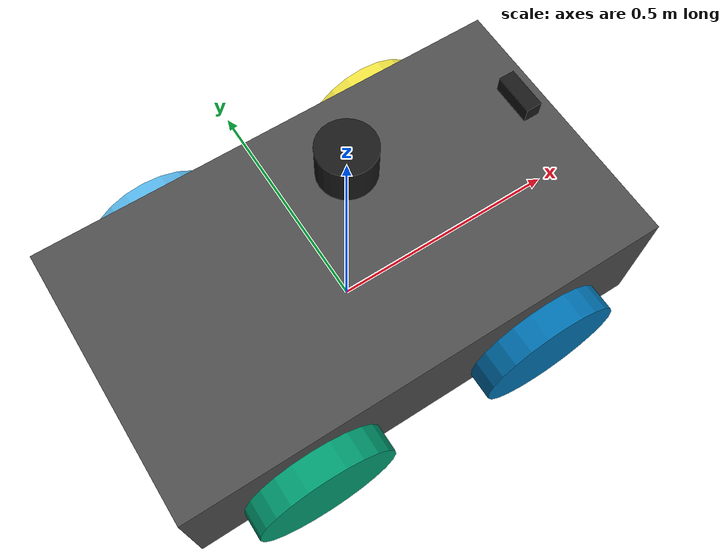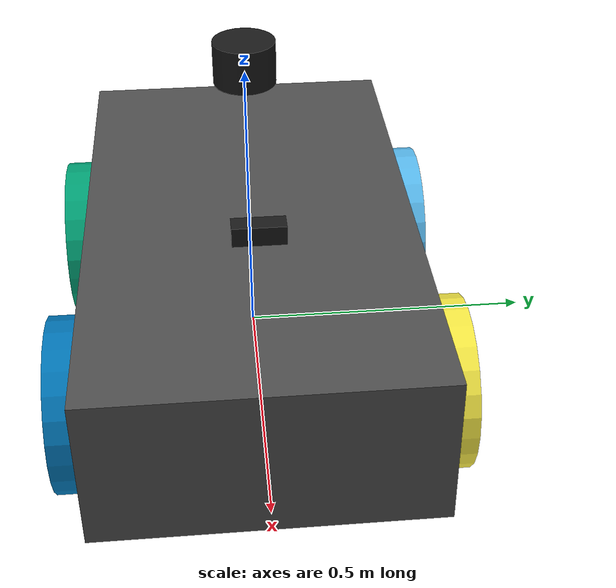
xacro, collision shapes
<robot name="husky" xmlns:xacro="http://www.ros.org/wiki/xacro">

    <!-- URDF file for general ROS systems such as ros_control, rviz, etc.           -->
    <!-- Clearpath Robotics Husky A200 - Differential Drive Robot                     -->

    <xacro:macro name="make_box_inertia" params="mass size_x size_y size_z">
        <inertial>
            <mass value="${mass}" />
            <inertia ixx="${mass * (size_y * size_y + size_z * size_z) / 12}" ixy="0" ixz="0" iyy="${mass * (size_z * size_z + size_x * size_x) / 12}" iyz="0" izz="${mass * (size_x * size_x + size_y * size_y) / 12}" />
        </inertial>
    </xacro:macro>

    <xacro:macro name="make_wheel_inertia" params="mass radius length">
        <inertial>
            <mass value="${mass}" />
            <!-- assuming axis of cylinder is y, not z -->
            <inertia ixx="${mass * (radius * radius / 4 + length * length / 12)}" ixy="0" ixz="0" iyy="${mass * radius * radius / 2}" iyz="0" izz="${mass * (radius * radius / 4 + length * length / 12)}" />
        </inertial>
    </xacro:macro>

    <!-- ================= Husky Dimensions ================= -->
    <xacro:property name="wheel_radius" value="0.148" />
    <xacro:property name="wheel_length" value="0.1143" />
    <xacro:property name="wheel_mass" value="2.6357" />
    <xacro:property name="wheel_separation" value="0.5709" />
    <xacro:property name="wheel_base" value="0.512" />

    <!-- ================= MAIN BODY (ROOT LINK) ================= -->

    <link name="base_link">
        <visual name="lidar_mast">
            <origin xyz="0.0000 0 0.351695" rpy="0 0 0" />
            <geometry><cylinder radius="0.020" length="0.26340" /></geometry>
            <material name="dark_grey"><color rgba="0.3 0.3 0.3 1" /></material>
        </visual>
        <visual name="camera_mast">
            <origin xyz="0.3543 0 0.311325" rpy="0 0 0" />
            <geometry><cylinder radius="0.010" length="0.18265" /></geometry>
            <material name="dark_grey"><color rgba="0.3 0.3 0.3 1" /></material>
        </visual>
        <inertial>
            <mass value="33.855" />
            <origin xyz="-0.0856132 -0.000839955 0.238145" rpy="0 0 0" />
            <inertia ixx="2.2343" ixy="-0.023642" ixz="0.275174" iyy="3.42518" iyz="0.00239624" izz="2.1241" />
        </inertial>

        <visual name="base">
            <origin xyz="0 0 0" rpy="0 0 0" />
            <geometry>
                <mesh filename="package://differential/model/meshes/base_link.stl" />
            </geometry>
        </visual>

        <visual name="top_plate">
            <origin xyz="0 0 0" rpy="0 0 0" />
            <geometry>
                <mesh filename="package://differential/model/meshes/top_plate.stl" />
            </geometry>
        </visual>

        <visual name="front_bumper">
            <origin xyz="0.47 0 0.091" rpy="0 0 0" />
            <geometry>
                <mesh filename="package://differential/model/meshes/bumper.stl" />
            </geometry>
        </visual>

        <visual name="rear_bumper">
            <origin xyz="-0.47 0 0.091" rpy="0 0 ${pi}" />
            <geometry>
                <mesh filename="package://differential/model/meshes/bumper.stl" />
            </geometry>
        </visual>

        <visual name="user_rail">
            <origin xyz="0.272 0 0.245" rpy="0 0 0" />
            <geometry>
                <mesh filename="package://differential/model/meshes/user_rail.stl" />
            </geometry>
        </visual>

        <collision name="collision">
            <origin xyz="0 0 0.1" rpy="0 0 0" />
            <geometry>
                <box size="1.0074 0.5709 0.2675" />
            </geometry>
        </collision>
    </link>

    <!-- ================= BACK LEFT WHEEL ================= -->

    <link name="back_left_wheel">
        <xacro:make_wheel_inertia mass="${wheel_mass}" radius="${wheel_radius}" length="${wheel_length}" />

        <visual>
            <origin xyz="0 0 0" rpy="${-pi} 0 0" />
            <geometry>
                <mesh filename="package://differential/model/meshes/wheel.stl" />
            </geometry>
        </visual>

        <collision>
            <origin xyz="0 0 0" rpy="${-pi/2} 0 0" />
            <geometry>
                <cylinder radius="${wheel_radius}" length="${wheel_length}" />
            </geometry>
        </collision>
    </link>

    <joint name="back_left_joint" type="continuous">
        <origin xyz="${-wheel_base/2} ${wheel_separation/2} 0.035" rpy="0 0 0" />
        <parent link="base_link" />
        <child link="back_left_wheel" />
        <axis xyz="0 1 0" />
        <limit effort="30.000" velocity="5.0" />
    </joint>

    <transmission name="back_left_transmission">
        <type>transmission_interface/SimpleTransmission</type>
        <joint name="back_left_joint">
            <hardwareInterface>hardware_interface/VelocityJointInterface</hardwareInterface>
        </joint>
        <actuator name="back_left_actuator">
            <mechanicalReduction>1</mechanicalReduction>
        </actuator>
    </transmission>

    <!-- ================= BACK RIGHT WHEEL ================= -->

    <link name="back_right_wheel">
        <xacro:make_wheel_inertia mass="${wheel_mass}" radius="${wheel_radius}" length="${wheel_length}" />

        <visual>
            <origin xyz="0 0 0" rpy="${-pi} 0 0" />
            <geometry>
                <mesh filename="package://differential/model/meshes/wheel.stl" />
            </geometry>
        </visual>

        <collision>
            <origin xyz="0 0 0" rpy="${-pi/2} 0 0" />
            <geometry>
                <cylinder radius="${wheel_radius}" length="${wheel_length}" />
            </geometry>
        </collision>
    </link>

    <joint name="back_right_joint" type="continuous">
        <origin xyz="${-wheel_base/2} ${-wheel_separation/2} 0.035" rpy="0 0 0" />
        <parent link="base_link" />
        <child link="back_right_wheel" />
        <axis xyz="0 1 0" />
        <limit effort="30.000" velocity="5.0" />
    </joint>

    <transmission name="back_right_transmission">
        <type>transmission_interface/SimpleTransmission</type>
        <joint name="back_right_joint">
            <hardwareInterface>hardware_interface/VelocityJointInterface</hardwareInterface>
        </joint>
        <actuator name="back_right_actuator">
            <mechanicalReduction>1</mechanicalReduction>
        </actuator>
    </transmission>

    <!-- ================= FRONT LEFT WHEEL ================= -->

    <link name="front_left_wheel">
        <xacro:make_wheel_inertia mass="${wheel_mass}" radius="${wheel_radius}" length="${wheel_length}" />

        <visual>
            <origin xyz="0 0 0" rpy="${-pi} 0 0" />
            <geometry>
                <mesh filename="package://differential/model/meshes/wheel.stl" />
            </geometry>
        </visual>

        <collision>
            <origin xyz="0 0 0" rpy="${-pi/2} 0 0" />
            <geometry>
                <cylinder radius="${wheel_radius}" length="${wheel_length}" />
            </geometry>
        </collision>
    </link>

    <joint name="front_left_joint" type="continuous">
        <origin xyz="${wheel_base/2} ${wheel_separation/2} 0.035" rpy="0 0 0" />
        <parent link="base_link" />
        <child link="front_left_wheel" />
        <axis xyz="0 1 0" />
        <limit effort="30.000" velocity="5.0" />
    </joint>

    <transmission name="front_left_transmission">
        <type>transmission_interface/SimpleTransmission</type>
        <joint name="front_left_joint">
            <hardwareInterface>hardware_interface/VelocityJointInterface</hardwareInterface>
        </joint>
        <actuator name="front_left_actuator">
            <mechanicalReduction>1</mechanicalReduction>
        </actuator>
    </transmission>

    <!-- ================= FRONT RIGHT WHEEL ================= -->

    <link name="front_right_wheel">
        <xacro:make_wheel_inertia mass="${wheel_mass}" radius="${wheel_radius}" length="${wheel_length}" />

        <visual>
            <origin xyz="0 0 0" rpy="${-pi} 0 0" />
            <geometry>
                <mesh filename="package://differential/model/meshes/wheel.stl" />
            </geometry>
        </visual>

        <collision>
            <origin xyz="0 0 0" rpy="${-pi/2} 0 0" />
            <geometry>
                <cylinder radius="${wheel_radius}" length="${wheel_length}" />
            </geometry>
        </collision>
    </link>

    <joint name="front_right_joint" type="continuous">
        <origin xyz="${wheel_base/2} ${-wheel_separation/2} 0.035" rpy="0 0 0" />
        <parent link="base_link" />
        <child link="front_right_wheel" />
        <axis xyz="0 1 0" />
        <limit effort="30.000" velocity="5.0" />
    </joint>

    <transmission name="front_right_transmission">
        <type>transmission_interface/SimpleTransmission</type>
        <joint name="front_right_joint">
            <hardwareInterface>hardware_interface/VelocityJointInterface</hardwareInterface>
        </joint>
        <actuator name="front_right_actuator">
            <mechanicalReduction>1</mechanicalReduction>
        </actuator>
    </transmission>

    <!-- ================= VELODYNE LIDAR ================= -->

    <link name="velodyne_base_link">
        <inertial>
            <mass value="0.825345" />
            <origin xyz="0 0 0" rpy="0 0 0" />
            <inertia ixx="0.000902966634" ixy="0" ixz="0" iyy="0.000902966634" iyz="0" izz="0.00109876529" />
        </inertial>

        <visual>
            <origin xyz="0 0 0" rpy="0 0 0" />
            <geometry>
                <cylinder radius="0.0516" length="0.0717" />
            </geometry>
            <material name="velodyne_dark">
                <color rgba="0.1 0.1 0.1 1.0" />
            </material>
        </visual>

        <collision>
            <origin xyz="0 0 0" rpy="0 0 0" />
            <geometry>
                <cylinder radius="0.0516" length="0.0717" />
            </geometry>
        </collision>
    </link>

    <joint name="velodyne_base_mount_joint" type="fixed">
        <origin xyz="0 0 0.51925" rpy="0 0 0" />
        <parent link="base_link" />
        <child link="velodyne_base_link" />
    </joint>

    <!-- ================= IMU ================= -->

    <link name="imu_link">
        <inertial>
            <mass value="0.0149159" />
            <origin xyz="0 0 0" rpy="0 0 0" />
            <inertia ixx="3.60467583e-06" ixy="0" ixz="0" iyy="3.60467583e-06" iyz="0" izz="6.21495833e-06" />
        </inertial>

        <visual>
            <origin xyz="0 0 0" rpy="0 0 0" />
            <geometry>
                <box size="0.05 0.05 0.02" />
            </geometry>
            <material name="imu_grey">
                <color rgba="0.3 0.3 0.3 1.0" />
            </material>
        </visual>

        <collision>
            <origin xyz="0 0 0" rpy="0 0 0" />
            <geometry>
                <box size="0.05 0.05 0.02" />
            </geometry>
        </collision>
    </link>

    <joint name="imu_joint" type="fixed">
        <origin xyz="-0.063983 -0.000629 0.196003" rpy="0 0 0" />
        <parent link="base_link" />
        <child link="imu_link" />
    </joint>

    <!-- ================= CAMERA ================= -->

    <link name="camera_link">
        <inertial>
            <mass value="0.00994392" />
            <origin xyz="0 0 0" rpy="0 0 0" />
            <inertia ixx="6.049218e-06" ixy="0" ixz="0" iyy="1.491588e-06" iyz="0" izz="6.049218e-06" />
        </inertial>

        <visual>
            <origin xyz="0 0 0" rpy="0 0 0" />
            <geometry>
                <box size="0.03 0.08 0.03" />
            </geometry>
            <material name="camera_black">
                <color rgba="0.1 0.1 0.1 1.0" />
            </material>
        </visual>

        <collision>
            <origin xyz="0 0 0" rpy="0 0 0" />
            <geometry>
                <box size="0.03 0.08 0.03" />
            </geometry>
        </collision>
    </link>

    <joint name="camera_joint" type="fixed">
        <origin xyz="0.3543 0 0.41765" rpy="0 0 0" />
        <parent link="base_link" />
        <child link="camera_link" />
    </joint>

    <!-- Optical frame (importante para ROS - convencion de camaras) -->
    <link name="camera_optical_frame">
        <inertial>
            <mass value="0.001" />
            <origin xyz="0 0 0" rpy="0 0 0" />
            <inertia ixx="0.00001" ixy="0" ixz="0" iyy="0.00001" iyz="0" izz="0.00001" />
        </inertial>
    </link>

    <joint name="camera_optical_joint" type="fixed">
        <!-- Rotacion para alinear con convencion ROS (Z adelante, X derecha, Y abajo) -->
        <origin xyz="0 0 0" rpy="${-pi/2} 0 ${-pi/2}" />
        <parent link="camera_link" />
        <child link="camera_optical_frame" />
    </joint>

</robot>
